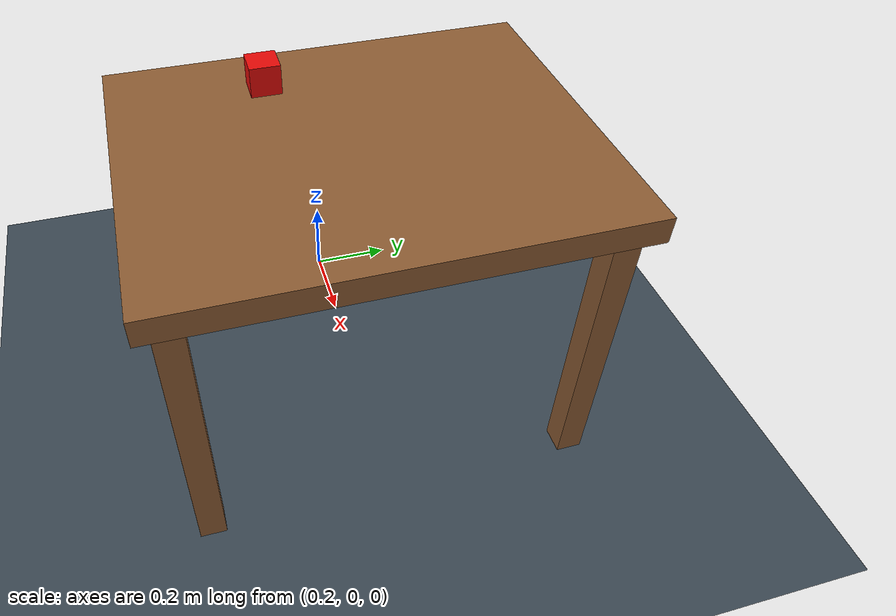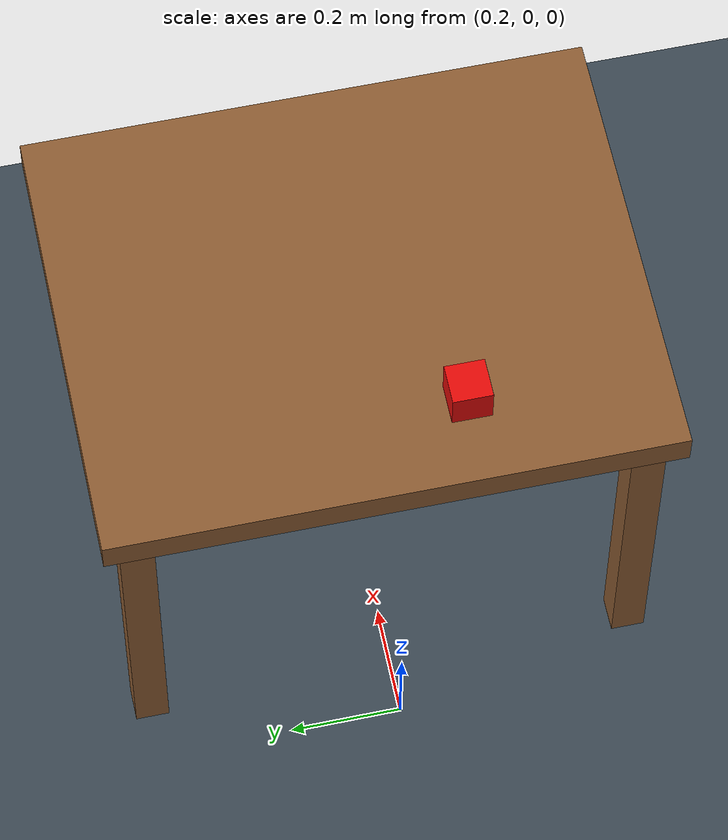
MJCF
<mujoco model="g1_red_cube_tabletop">
  <!-- Project-owned environment only. Robot and meshes are loaded by scripts/scene.py. -->
  <option timestep="0.002" integrator="implicitfast" gravity="0 0 -9.81"/>
  <statistic center="0.3 0 0.7" extent="2"/>
  <visual>
    <global offwidth="960" offheight="720"/>
    <headlight diffuse="0.7 0.7 0.7" ambient="0.3 0.3 0.3" specular="0.2 0.2 0.2"/>
  </visual>
  <asset>
    <material name="task_floor_mat" rgba="0.23 0.28 0.32 1"/>
    <material name="task_table_mat" rgba="0.55 0.36 0.20 1"/>
    <material name="task_red_mat" rgba="0.9 0.04 0.03 1"/>
  </asset>
  <worldbody>
    <light pos="0 -2 3" dir="0 0 -1" directional="true"/>
    <geom name="task_floor" type="plane" size="0 0 0.05" material="task_floor_mat"/>
    <!-- Table surface z=0.75 m; front edge x=0.25 m. -->
    <body name="task_table" pos="0.65 0 0">
      <geom name="task_table_top" type="box" pos="0 0 0.72" size="0.4 0.5 0.03" material="task_table_mat"/>
      <geom type="box" pos="-0.34 -0.44 0.345" size="0.03 0.03 0.345" material="task_table_mat"/>
      <geom type="box" pos="-0.34 0.44 0.345" size="0.03 0.03 0.345" material="task_table_mat"/>
      <geom type="box" pos="0.34 -0.44 0.345" size="0.03 0.03 0.345" material="task_table_mat"/>
      <geom type="box" pos="0.34 0.44 0.345" size="0.03 0.03 0.345" material="task_table_mat"/>
    </body>
    <body name="task_red_cube" pos="0.4 -0.15 0.785">
      <freejoint name="task_cube_free"/>
      <geom name="task_cube_geom" type="box" size="0.035 0.035 0.035" mass="0.1" material="task_red_mat" friction="0.95 0.01 0.001"/>
    </body>
    <camera name="task_overview" pos="-2.163 -1.125 1.615" xyaxes="0.422618 -0.906308 0 0.280065 0.130596 0.951057"/>
  </worldbody>
</mujoco>
